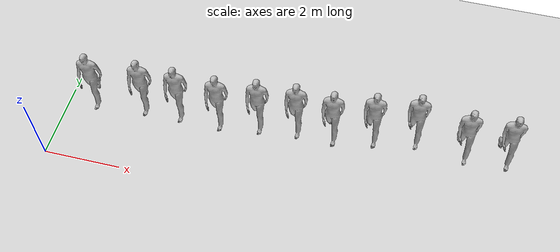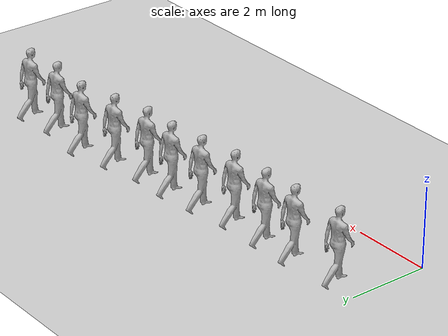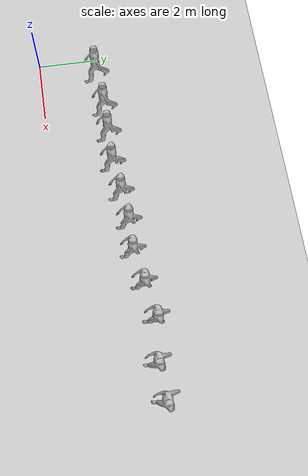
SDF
<sdf version="1.7">
 <world name="default">
  <light name="sun" type="directional">
   <pose>0 0 10 0 -0 0</pose>
   <diffuse>0.8 0.8 0.8 1</diffuse>
   <specular>0.2 0.2 0.2 1</specular>
   <attenuation>
    <range>1000</range>
    <constant>0.9</constant>
    <linear>0.01</linear>
    <quadratic>0.001</quadratic>
   </attenuation>
   <direction>-0.5 0.1 -0.9</direction>
   <spot><inner_angle>0</inner_angle><outer_angle>0</outer_angle><falloff>0</falloff></spot>
  </light>
  <model name="ground_plane">
   <static>1</static>
   <link name="link">
    <collision name="collision">
     <geometry><plane><normal>0 0 1</normal><size>100 100</size></plane></geometry>
     <surface><friction><ode><mu>100</mu><mu2>50</mu2></ode></friction></surface>
    </collision>
    <visual name="visual">
     <cast_shadows>0</cast_shadows>
     <geometry><plane><normal>0 0 1</normal><size>100 100</size></plane></geometry>
     <material>
      <script><uri>file://media/materials/scripts/gazebo.material</uri><name>Gazebo/Grey</name></script>
     </material>
    </visual>
   </link>
  </model>
  <gravity>0 0 -9.8</gravity>
  <magnetic_field>6e-06 2.3e-05 -4.2e-05</magnetic_field>
  <atmosphere type="adiabatic"/>
  <physics name="default_physics" default="0" type="ode">
   <max_step_size>0.003</max_step_size>
   <real_time_factor>1</real_time_factor>
   <real_time_update_rate>2000</real_time_update_rate>
  </physics>
  <scene><ambient>0.4 0.4 0.4 1</ambient><background>0.7 0.7 0.7 1</background><shadows>1</shadows></scene>
  <audio><device>default</device></audio>
  <spherical_coordinates>
   <surface_model>EARTH_WGS84</surface_model>
   <latitude_deg>0</latitude_deg>
   <longitude_deg>0</longitude_deg>
   <elevation>0</elevation>
   <heading_deg>0</heading_deg>
  </spherical_coordinates>
  <model name="agent1">
   <link name="link">
    <inertial>
     <pose>0 0 0.95 0 -0 0</pose>
     <mass>80</mass>
     <inertia><ixx>27.82</ixx><ixy>0</ixy><ixz>0</ixz><iyy>24.88</iyy><iyz>0</iyz><izz>4.57</izz></inertia>
    </inertial>
    <collision name="bottom">
     <pose>0 0 0.01 0 -0 0</pose>
     <geometry><box><size>0.35 0.75 0.02</size></box></geometry>
    </collision>
    <collision name="person">
     <pose>0 0 -0.02 0 -0 0</pose>
     <geometry><mesh><uri>model://person_walking/meshes/walking.dae</uri></mesh></geometry>
    </collision>
    <visual name="visual">
     <pose>0 0 -0.02 0 -0 0</pose>
     <geometry><mesh><uri>model://person_walking/meshes/walking.dae</uri></mesh></geometry>
    </visual>
   </link>
   <plugin name="multi_obs" filename="libmulti_obs.so"/>
   <pose>0.672796 1.91719 0 0 -0 0</pose>
  </model>
  <model name="agent2">
   <link name="link">
    <inertial>
     <pose>0 0 0.95 0 -0 0</pose>
     <mass>80</mass>
     <inertia><ixx>27.82</ixx><ixy>0</ixy><ixz>0</ixz><iyy>24.88</iyy><iyz>0</iyz><izz>4.57</izz></inertia>
    </inertial>
    <collision name="bottom">
     <pose>0 0 0.01 0 -0 0</pose>
     <geometry><box><size>0.35 0.75 0.02</size></box></geometry>
    </collision>
    <collision name="person">
     <pose>0 0 -0.02 0 -0 0</pose>
     <geometry><mesh><uri>model://person_walking/meshes/walking.dae</uri></mesh></geometry>
    </collision>
    <visual name="visual">
     <pose>0 0 -0.02 0 -0 0</pose>
     <geometry><mesh><uri>model://person_walking/meshes/walking.dae</uri></mesh></geometry>
    </visual>
   </link>
   <plugin name="multi_obs" filename="libmulti_obs.so"/>
   <pose>1.99062 2.03071 0 0 -0 0</pose>
  </model>
  <model name="agent3">
   <link name="link">
    <inertial>
     <pose>0 0 0.95 0 -0 0</pose>
     <mass>80</mass>
     <inertia><ixx>27.82</ixx><ixy>0</ixy><ixz>0</ixz><iyy>24.88</iyy><iyz>0</iyz><izz>4.57</izz></inertia>
    </inertial>
    <collision name="bottom">
     <pose>0 0 0.01 0 -0 0</pose>
     <geometry><box><size>0.35 0.75 0.02</size></box></geometry>
    </collision>
    <collision name="person">
     <pose>0 0 -0.02 0 -0 0</pose>
     <geometry><mesh><uri>model://person_walking/meshes/walking.dae</uri></mesh></geometry>
    </collision>
    <visual name="visual">
     <pose>0 0 -0.02 0 -0 0</pose>
     <geometry><mesh><uri>model://person_walking/meshes/walking.dae</uri></mesh></geometry>
    </visual>
   </link>
   <plugin name="multi_obs" filename="libmulti_obs.so"/>
   <pose>2.95389 2.04571 0 0 -0 0</pose>
  </model>
  <model name="agent4">
   <link name="link">
    <inertial>
     <pose>0 0 0.95 0 -0 0</pose>
     <mass>80</mass>
     <inertia><ixx>27.82</ixx><ixy>0</ixy><ixz>0</ixz><iyy>24.88</iyy><iyz>0</iyz><izz>4.57</izz></inertia>
    </inertial>
    <collision name="bottom">
     <pose>0 0 0.01 0 -0 0</pose>
     <geometry><box><size>0.35 0.75 0.02</size></box></geometry>
    </collision>
    <collision name="person">
     <pose>0 0 -0.02 0 -0 0</pose>
     <geometry><mesh><uri>model://person_walking/meshes/walking.dae</uri></mesh></geometry>
    </collision>
    <visual name="visual">
     <pose>0 0 -0.02 0 -0 0</pose>
     <geometry><mesh><uri>model://person_walking/meshes/walking.dae</uri></mesh></geometry>
    </visual>
   </link>
   <plugin name="multi_obs" filename="libmulti_obs.so"/>
   <pose>4.03393 2.03986 0 0 -0 0</pose>
  </model>
  <model name="agent5">
   <link name="link">
    <inertial>
     <pose>0 0 0.95 0 -0 0</pose>
     <mass>80</mass>
     <inertia><ixx>27.82</ixx><ixy>0</ixy><ixz>0</ixz><iyy>24.88</iyy><iyz>0</iyz><izz>4.57</izz></inertia>
    </inertial>
    <collision name="bottom">
     <pose>0 0 0.01 0 -0 0</pose>
     <geometry><box><size>0.35 0.75 0.02</size></box></geometry>
    </collision>
    <collision name="person">
     <pose>0 0 -0.02 0 -0 0</pose>
     <geometry><mesh><uri>model://person_walking/meshes/walking.dae</uri></mesh></geometry>
    </collision>
    <visual name="visual">
     <pose>0 0 -0.02 0 -0 0</pose>
     <geometry><mesh><uri>model://person_walking/meshes/walking.dae</uri></mesh></geometry>
    </visual>
   </link>
   <plugin name="multi_obs" filename="libmulti_obs.so"/>
   <pose>5.06326 2.18488 0 0 -0 0</pose>
  </model>
  <model name="agent6">
   <link name="link">
    <inertial>
     <pose>0 0 0.95 0 -0 0</pose>
     <mass>80</mass>
     <inertia><ixx>27.82</ixx><ixy>0</ixy><ixz>0</ixz><iyy>24.88</iyy><iyz>0</iyz><izz>4.57</izz></inertia>
    </inertial>
    <collision name="bottom">
     <pose>0 0 0.01 0 -0 0</pose>
     <geometry><box><size>0.35 0.75 0.02</size></box></geometry>
    </collision>
    <collision name="person">
     <pose>0 0 -0.02 0 -0 0</pose>
     <geometry><mesh><uri>model://person_walking/meshes/walking.dae</uri></mesh></geometry>
    </collision>
    <visual name="visual">
     <pose>0 0 -0.02 0 -0 0</pose>
     <geometry><mesh><uri>model://person_walking/meshes/walking.dae</uri></mesh></geometry>
    </visual>
   </link>
   <plugin name="multi_obs" filename="libmulti_obs.so"/>
   <pose>6.04406 2.29167 0 0 -0 0</pose>
  </model>
  <model name="agent7">
   <link name="link">
    <inertial>
     <pose>0 0 0.95 0 -0 0</pose>
     <mass>80</mass>
     <inertia><ixx>27.82</ixx><ixy>0</ixy><ixz>0</ixz><iyy>24.88</iyy><iyz>0</iyz><izz>4.57</izz></inertia>
    </inertial>
    <collision name="bottom">
     <pose>0 0 0.01 0 -0 0</pose>
     <geometry><box><size>0.35 0.75 0.02</size></box></geometry>
    </collision>
    <collision name="person">
     <pose>0 0 -0.02 0 -0 0</pose>
     <geometry><mesh><uri>model://person_walking/meshes/walking.dae</uri></mesh></geometry>
    </collision>
    <visual name="visual">
     <pose>0 0 -0.02 0 -0 0</pose>
     <geometry><mesh><uri>model://person_walking/meshes/walking.dae</uri></mesh></geometry>
    </visual>
   </link>
   <plugin name="multi_obs" filename="libmulti_obs.so"/>
   <pose>6.98995 2.28117 0 0 -0 0</pose>
  </model>
  <model name="agent8">
   <link name="link">
    <inertial>
     <pose>0 0 0.95 0 -0 0</pose>
     <mass>80</mass>
     <inertia><ixx>27.82</ixx><ixy>0</ixy><ixz>0</ixz><iyy>24.88</iyy><iyz>0</iyz><izz>4.57</izz></inertia>
    </inertial>
    <collision name="bottom">
     <pose>0 0 0.01 0 -0 0</pose>
     <geometry><box><size>0.35 0.75 0.02</size></box></geometry>
    </collision>
    <collision name="person">
     <pose>0 0 -0.02 0 -0 0</pose>
     <geometry><mesh><uri>model://person_walking/meshes/walking.dae</uri></mesh></geometry>
    </collision>
    <visual name="visual">
     <pose>0 0 -0.02 0 -0 0</pose>
     <geometry><mesh><uri>model://person_walking/meshes/walking.dae</uri></mesh></geometry>
    </visual>
   </link>
   <plugin name="multi_obs" filename="libmulti_obs.so"/>
   <pose>8.00994 2.48384 0 0 -0 0</pose>
  </model>
  <model name="agent9">
   <link name="link">
    <inertial>
     <pose>0 0 0.95 0 -0 0</pose>
     <mass>80</mass>
     <inertia><ixx>27.82</ixx><ixy>0</ixy><ixz>0</ixz><iyy>24.88</iyy><iyz>0</iyz><izz>4.57</izz></inertia>
    </inertial>
    <collision name="bottom">
     <pose>0 0 0.01 0 -0 0</pose>
     <geometry><box><size>0.35 0.75 0.02</size></box></geometry>
    </collision>
    <collision name="person">
     <pose>0 0 -0.02 0 -0 0</pose>
     <geometry><mesh><uri>model://person_walking/meshes/walking.dae</uri></mesh></geometry>
    </collision>
    <visual name="visual">
     <pose>0 0 -0.02 0 -0 0</pose>
     <geometry><mesh><uri>model://person_walking/meshes/walking.dae</uri></mesh></geometry>
    </visual>
   </link>
   <plugin name="multi_obs" filename="libmulti_obs.so"/>
   <pose>9.06902 2.69943 0 0 -0 0</pose>
  </model>
  <model name="agent10">
   <link name="link">
    <inertial>
     <pose>0 0 0.95 0 -0 0</pose>
     <mass>80</mass>
     <inertia><ixx>27.82</ixx><ixy>0</ixy><ixz>0</ixz><iyy>24.88</iyy><iyz>0</iyz><izz>4.57</izz></inertia>
    </inertial>
    <collision name="bottom">
     <pose>0 0 0.01 0 -0 0</pose>
     <geometry><box><size>0.35 0.75 0.02</size></box></geometry>
    </collision>
    <collision name="person">
     <pose>0 0 -0.02 0 -0 0</pose>
     <geometry><mesh><uri>model://person_walking/meshes/walking.dae</uri></mesh></geometry>
    </collision>
    <visual name="visual">
     <pose>0 0 -0.02 0 -0 0</pose>
     <geometry><mesh><uri>model://person_walking/meshes/walking.dae</uri></mesh></geometry>
    </visual>
   </link>
   <plugin name="multi_obs" filename="libmulti_obs.so"/>
   <pose>10.3301 2.53602 0 0 -0 0</pose>
  </model>
  <model name="agent11">
   <link name="link">
    <inertial>
     <pose>0 0 0.95 0 -0 0</pose>
     <mass>80</mass>
     <inertia><ixx>27.82</ixx><ixy>0</ixy><ixz>0</ixz><iyy>24.88</iyy><iyz>0</iyz><izz>4.57</izz></inertia>
    </inertial>
    <collision name="bottom">
     <pose>0 0 0.01 0 -0 0</pose>
     <geometry><box><size>0.35 0.75 0.02</size></box></geometry>
    </collision>
    <collision name="person">
     <pose>0 0 -0.02 0 -0 0</pose>
     <geometry><mesh><uri>model://person_walking/meshes/walking.dae</uri></mesh></geometry>
    </collision>
    <visual name="visual">
     <pose>0 0 -0.02 0 -0 0</pose>
     <geometry><mesh><uri>model://person_walking/meshes/walking.dae</uri></mesh></geometry>
    </visual>
   </link>
   <plugin name="multi_obs" filename="libmulti_obs.so"/>
   <pose>11.3817 2.61316 0 0 -0 0</pose>
  </model>
 </world>
</sdf>
